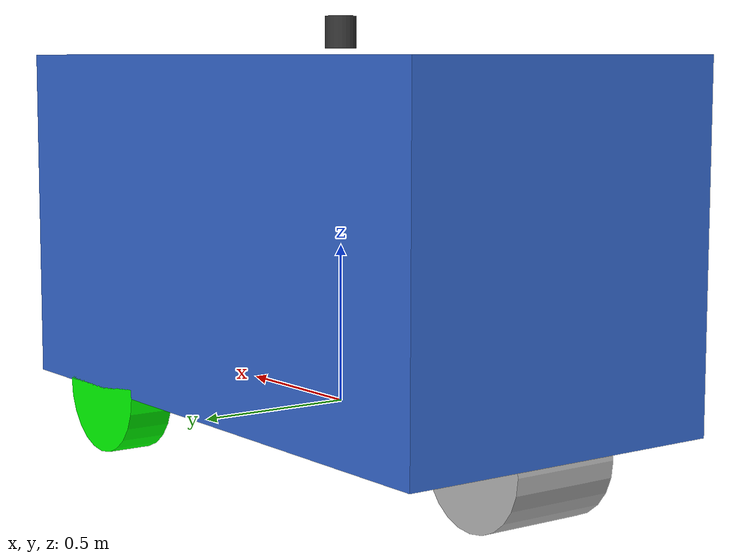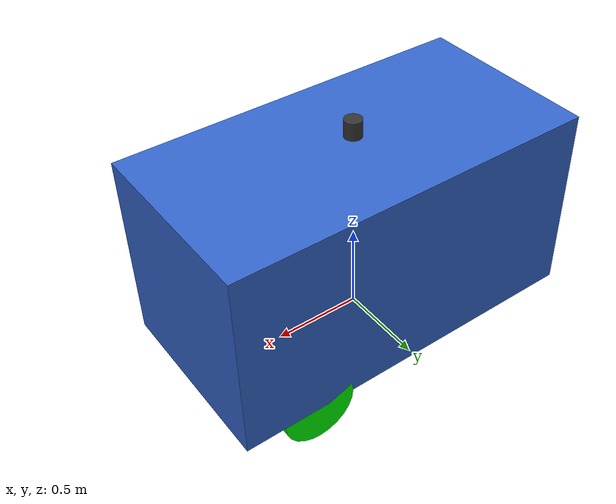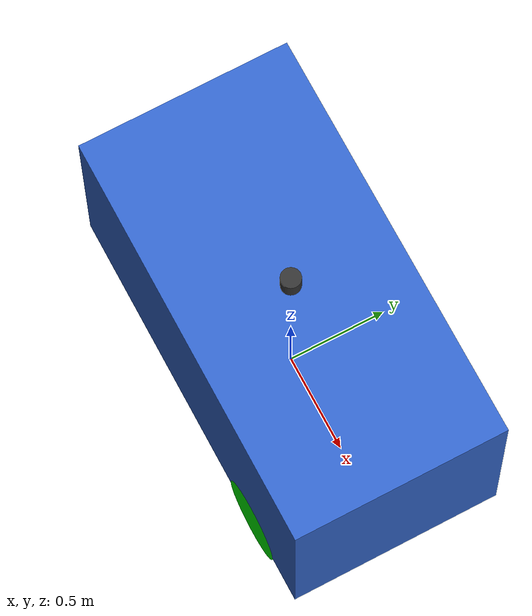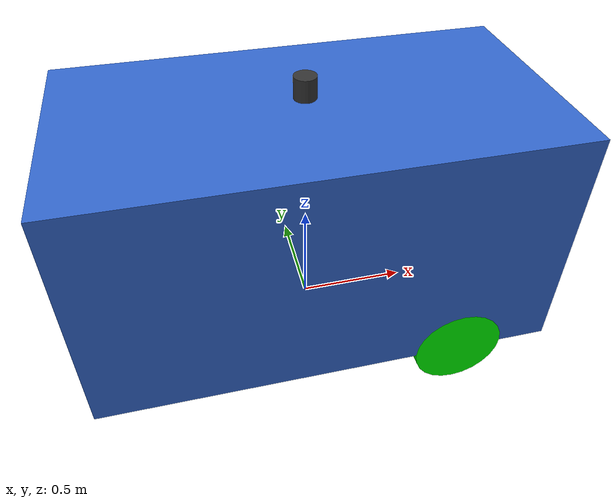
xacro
<?xml version="1.0"?>
<robot name="tri_wheel_robot" xmlns:xacro="http://www.ros.org/wiki/xacro">

  <!-- ========================= 定义常量（方便修改） ========================= -->
  <xacro:property name="base_length" value="2.1" /> <!-- 车体长 -->
  <xacro:property name="base_width"  value="1.076" /> <!-- 车体宽 -->
  <xacro:property name="base_height" value="1.1" /> <!-- 车体高 -->
  <xacro:property name="base_mass" value="37" /> <!-- 车体质量 -->
  <xacro:property name="wheel_radius" value="0.21" /> <!-- 轮子半径 -->
  <xacro:property name="wheel_width"  value="0.15" /> <!-- 轮子厚度 -->
  <xacro:property name="steering_wheel_radius" value="0.195" /> <!-- 轮子半径 -->
  <xacro:property name="steering_wheel_width"  value="0.35" /> <!-- 轮子厚度 -->
  <xacro:property name="wheel_y_offset" value="0.463" /> <!-- 驱动轮到中心距离 -->
  <xacro:property name="drive_wheel_mass" value="20" /> <!-- 驱动轮质量 -->
  <xacro:property name="steering_wheel_mass" value="20" /> <!-- 转向轮质量 -->
  <xacro:property name="steering_link_mass" value="10" /> <!-- 转向连杆质量 -->

  <!-- ========================= 传感器参数 ========================= -->
  <xacro:property name="lidar_height" value="0.1" />      <!-- 激光雷达高度 -->
  <xacro:property name="lidar_radius" value="0.05" />     <!-- 激光雷达半径 -->
  <xacro:property name="camera_size" value="0.05" />      <!-- 相机尺寸 -->
  <xacro:property name="imu_size" value="0.02" />         <!-- IMU 尺寸 -->

  <!-- ========================= 添加虚拟根链接 ========================= -->
  <link name="base_footprint">
    <!-- 这个链接没有惯性，没有碰撞和视觉，只是一个参考点 -->
  </link>

  <!-- ========================= 定义车体连杆 (base_link) ========================= -->
  <link name="base_link">
    <visual>
      <geometry>
        <box size="${base_length} ${base_width} ${base_height}"/>
      </geometry>
      <material name="blue">
        <color rgba="0.2 0.4 0.8 1.0"/> <!-- 蓝色 -->
      </material>
    </visual>
    <collision>
      <geometry>
        <box size="${base_length} ${base_width} ${base_height}"/>
      </geometry>
    </collision>
    <inertial>
      <mass value="${base_mass}"/> <!-- 车体质量，单位：千克 -->
      <inertia ixx="${base_mass*(base_width*base_width + base_height*base_height)/12}" ixy="0.0" ixz="0.0" iyy="${base_mass*(base_length*base_length + (base_height)*(base_height))/12}" iyz="0.0" izz="${base_mass*(base_length*base_length + base_width*base_width)/12}"/>
    </inertial>
  </link>

  <!-- 添加固定关节连接虚拟根链接和base_link -->
  <joint name="base_footprint_joint" type="fixed">
    <parent link="base_footprint"/>
    <child link="base_link"/>
    <origin xyz="0 0 ${base_height/2}" rpy="0 0 0"/>
  </joint>

  <!-- ========================= 定义左驱动轮 ========================= -->
  <link name="left_wheel_link">
    <visual>
      <geometry>
        <cylinder radius="${wheel_radius}" length="${wheel_width}"/>
      </geometry>
      <material name="green">
       <color rgba="0.0 1.0 0.0 1.0"/> <!-- 绿色 -->
      </material>
    </visual>
    <collision>
      <geometry>
        <cylinder radius="${wheel_radius}" length="${wheel_width}"/>
      </geometry>
    </collision>
    <inertial>
      <mass value="${drive_wheel_mass}"/>
      <inertia ixx="${drive_wheel_mass*(3*wheel_radius*wheel_radius + wheel_width*wheel_width)/12}" ixy="0.0" ixz="0.0" iyy="${drive_wheel_mass*(3*wheel_radius*wheel_radius + wheel_width*wheel_width)/12}" iyz="0.0" izz="${drive_wheel_mass*wheel_radius*wheel_radius/2}"/>
    </inertial>
  </link>

  <!-- 左轮关节：连接车体与左轮，类型为 continuous（连续旋转）-->
  <joint name="left_wheel_joint" type="continuous">
    <parent link="base_link"/>
    <child link="left_wheel_link"/>
    <origin xyz="0.616 ${wheel_y_offset} -${base_height/2}" rpy="1.5708 0 0"/>
    <axis xyz="0 0 1"/> <!-- 绕Y轴旋转 -->
  </joint>

  <!-- ========================= 定义右驱动轮（与左轮对称） ========================= -->
  <link name="right_wheel_link">
    <visual>
      <geometry>
        <cylinder radius="${wheel_radius}" length="${wheel_width}"/>
      </geometry>
      <material name="green">
       <color rgba="0.0 1.0 0.0 1.0"/> <!-- 绿色 -->
      </material>
    </visual>
    <collision>
      <geometry>
        <cylinder radius="${wheel_radius}" length="${wheel_width}"/>
      </geometry>
    </collision>
    <inertial>
      <mass value="${drive_wheel_mass}"/>
      <inertia ixx="${drive_wheel_mass*(3*wheel_radius*wheel_radius + wheel_width*wheel_width)/12}" ixy="0.0" ixz="0.0" iyy="${drive_wheel_mass*(3*wheel_radius*wheel_radius + wheel_width*wheel_width)/12}" iyz="0.0" izz="${drive_wheel_mass*wheel_radius*wheel_radius/2}"/>
    </inertial>
  </link>

  <joint name="right_wheel_joint" type="continuous">
    <parent link="base_link"/>
    <child link="right_wheel_link"/>
    <origin xyz="0.616 -${wheel_y_offset} -${base_height/2}" rpy="1.5708 0 0"/>
    <axis xyz="0 0 1"/>
  </joint>

  <!-- ========================= 定义前转向轮（可转向） ========================= -->
  <!-- 1. 转向臂连杆 (只是一个用于转向的连接杆) -->
  <link name="caster_steering_link">
    <visual>
        <origin xyz="0 0 0" rpy="0 0 0"/>
        <geometry>
            <cylinder radius="0.05" length="0.3"/> <!-- 一个小圆柱，表示转向臂 -->
        </geometry>
        <material name="gray">
            <color rgba="0.5 0.5 0.5 1.0"/>
        </material>
    </visual>
    <inertial>
        <mass value="${steering_link_mass}"/>
      <inertia ixx="${steering_link_mass*(3*0.05*0.05 + 0.3*0.3)/12}" ixy="0.0" ixz="0.0" iyy="${steering_link_mass*(3*0.05*0.05 + 0.3*0.3)/12}" iyz="0.0" izz="${steering_link_mass*0.05*0.05/2}"/>
    </inertial>
  </link>

  <!-- 2. 转向轮（真正的轮子）连杆 -->
  <link name="caster_wheel_link">
    <visual>
        <geometry>
            <!-- 轮子：一个直立的圆柱，注意轴线是Z轴 -->
            <cylinder radius="${steering_wheel_radius}" length="${steering_wheel_width}"/>
        </geometry>
        <material name="gray">
            <color rgba="0.7 0.7 0.7 1.0"/>
        </material>
    </visual>
    <collision>
        <geometry>
            <cylinder radius="${steering_wheel_radius}" length="${steering_wheel_width}"/>
        </geometry>
    </collision>
    <inertial>
        <mass value="${steering_wheel_mass}"/>
      <inertia ixx="${steering_wheel_mass*(3*steering_wheel_radius*steering_wheel_radius + steering_wheel_width*steering_wheel_width)/12}" ixy="0.0" ixz="0.0" iyy="${steering_wheel_mass*steering_wheel_radius*steering_wheel_radius/2}" iyz="0.0" izz="${steering_wheel_mass*(3*steering_wheel_radius*steering_wheel_radius + steering_wheel_width*steering_wheel_width)/12}"/>
  </inertial>
  </link>

  <!-- 3. 转向关节：连接车体与转向臂，控制左右转向 (revolute，绕Z轴) -->
  <joint name="caster_steering_joint" type="revolute">
    <parent link="base_link"/>
    <child link="caster_steering_link"/>
    <!-- 安装位置：车前部中间，略低于车体 -->
    <origin xyz="-0.855 0 -${base_height/2}" rpy="0 0 0"/>
    <axis xyz="0 0 1"/> <!-- 绕Z轴旋转（水平转向） -->
    <!-- 限制转向角度，例如左右各75度（约1.31弧度） -->
    <limit lower="-1.57" upper="1.57" effort="500.0" velocity="1.0"/>
    <dynamics damping="1.0" friction="0.1"/>
  </joint>

  <!-- 4. 滚动关节：连接转向臂与轮子，控制轮子滚动 (continuous，绕轮子Y轴) -->
  <joint name="caster_wheel_joint" type="continuous">
    <parent link="caster_steering_link"/>
    <child link="caster_wheel_link"/>
    <!-- 将轮子安装在转向臂末端，并将其扶正（绕X轴转90度） -->
    <origin xyz="0 0 -0.015" rpy="1.5708 0 0"/>
    <axis xyz="0 0 1"/> <!-- 轮子绕自己的Z轴旋转（滚动） -->
  </joint>

  <!--                              传感器定义                                       -->

  <!-- ========================= IMU 传感器 ========================= -->
  <!--
    IMU (惯性测量单元) 安装在车体中心
    输出：
    - 角速度 (gyroscope): rad/s
    - 线性加速度 (accelerometer): m/s²
    - 姿态 (orientation): 四元数
  -->
  <link name="imu_link">
    <visual>
      <geometry>
        <box size="${imu_size} ${imu_size} ${imu_size}"/>
      </geometry>
      <material name="red">
        <color rgba="1.0 0.0 0.0 1.0"/>
      </material>
    </visual>
    <collision>
      <geometry>
        <box size="${imu_size} ${imu_size} ${imu_size}"/>
      </geometry>
    </collision>
    <inertial>
      <mass value="0.01"/>
      <inertia ixx="0.000001" ixy="0" ixz="0" iyy="0.000001" iyz="0" izz="0.000001"/>
    </inertial>
  </link>

  <joint name="imu_joint" type="fixed">
    <parent link="base_link"/>
    <child link="imu_link"/>
    <origin xyz="0 0 0" rpy="0 0 0"/>
  </joint>

  <!-- ========================= 多线激光雷达 (3D LiDAR) ========================= -->
  <!--
    模拟 Velodyne VLP-16 或 Ouster OS1-32 类型的多线激光雷达
    安装在车顶中央，提供 360° 水平视角
    参数：
    - 水平视角: 360°
    - 垂直视角: -15° ~ +15° (共 16 线)
    - 最大距离: 100m
    - 更新频率: 10Hz
  -->
  <link name="lidar_link">
    <visual>
      <geometry>
        <cylinder radius="${lidar_radius}" length="${lidar_height}"/>
      </geometry>
      <material name="dark_gray">
        <color rgba="0.2 0.2 0.2 1.0"/>
      </material>
    </visual>
    <collision>
      <geometry>
        <cylinder radius="${lidar_radius}" length="${lidar_height}"/>
      </geometry>
    </collision>
    <inertial>
      <mass value="0.5"/>
      <inertia ixx="0.001" ixy="0" ixz="0" iyy="0.001" iyz="0" izz="0.001"/>
    </inertial>
  </link>

  <joint name="lidar_joint" type="fixed">
    <parent link="base_link"/>
    <child link="lidar_link"/>
    <!-- 安装在车顶中央 -->
    <origin xyz="0 0 ${base_height/2 + lidar_height/2 + 0.02}" rpy="0 0 0"/>
  </joint>

  <!-- ========================= 前置深度相机 (RGB-D Camera) ========================= -->
  <!--
    模拟 Intel RealSense D435 类型的深度相机
    安装在车体前方，用于近距离障碍物检测和视觉感知
    输出：
    - RGB 图像: 640x480 @ 30fps
    - 深度图像: 640x480 @ 30fps
    - 点云数据
  -->
  <link name="front_camera_link">
    <visual>
      <geometry>
        <box size="${camera_size} ${camera_size*2} ${camera_size}"/>
      </geometry>
      <material name="black">
        <color rgba="0.1 0.1 0.1 1.0"/>
      </material>
    </visual>
    <collision>
      <geometry>
        <box size="${camera_size} ${camera_size*2} ${camera_size}"/>
      </geometry>
    </collision>
    <inertial>
      <mass value="0.1"/>
      <inertia ixx="0.0001" ixy="0" ixz="0" iyy="0.0001" iyz="0" izz="0.0001"/>
    </inertial>
  </link>

  <!-- 相机光学坐标系 (Z 朝前, X 朝右, Y 朝下) -->
  <link name="front_camera_optical_link"/>

  <joint name="front_camera_joint" type="fixed">
    <parent link="base_link"/>
    <child link="front_camera_link"/>
    <!-- 安装在车体前方上部 -->
    <origin xyz="${base_length/2 - 0.05} 0 ${base_height/4}" rpy="0 0 0"/>
  </joint>

  <joint name="front_camera_optical_joint" type="fixed">
    <parent link="front_camera_link"/>
    <child link="front_camera_optical_link"/>
    <!-- 从 ROS 坐标系 (X前Y左Z上) 转换到相机光学坐标系 (Z前X右Y下) -->
    <origin xyz="0 0 0" rpy="${-pi/2} 0 ${-pi/2}"/>
  </joint>

  <!-- ========================= 后置相机 ========================= -->
  <!-- 用于倒车辅助和后方监控 -->
  <link name="rear_camera_link">
    <visual>
      <geometry>
        <box size="${camera_size} ${camera_size*2} ${camera_size}"/>
      </geometry>
      <material name="black">
        <color rgba="0.1 0.1 0.1 1.0"/>
      </material>
    </visual>
    <collision>
      <geometry>
        <box size="${camera_size} ${camera_size*2} ${camera_size}"/>
      </geometry>
    </collision>
    <inertial>
      <mass value="0.1"/>
      <inertia ixx="0.0001" ixy="0" ixz="0" iyy="0.0001" iyz="0" izz="0.0001"/>
    </inertial>
  </link>

  <link name="rear_camera_optical_link"/>

  <joint name="rear_camera_joint" type="fixed">
    <parent link="base_link"/>
    <child link="rear_camera_link"/>
    <!-- 安装在车体后方，朝后看 -->
    <origin xyz="${-base_length/2 + 0.05} 0 ${base_height/4}" rpy="0 0 ${pi}"/>
  </joint>

  <joint name="rear_camera_optical_joint" type="fixed">
    <parent link="rear_camera_link"/>
    <child link="rear_camera_optical_link"/>
    <origin xyz="0 0 0" rpy="${-pi/2} 0 ${-pi/2}"/>
  </joint>

  <!-- ========================= 左侧相机 ========================= -->
  <link name="left_camera_link">
    <visual>
      <geometry>
        <box size="${camera_size} ${camera_size*2} ${camera_size}"/>
      </geometry>
      <material name="black">
        <color rgba="0.1 0.1 0.1 1.0"/>
      </material>
    </visual>
    <collision>
      <geometry>
        <box size="${camera_size} ${camera_size*2} ${camera_size}"/>
      </geometry>
    </collision>
    <inertial>
      <mass value="0.1"/>
      <inertia ixx="0.0001" ixy="0" ixz="0" iyy="0.0001" iyz="0" izz="0.0001"/>
    </inertial>
  </link>

  <link name="left_camera_optical_link"/>

  <joint name="left_camera_joint" type="fixed">
    <parent link="base_link"/>
    <child link="left_camera_link"/>
    <origin xyz="0 ${base_width/2 - 0.05} ${base_height/4}" rpy="0 0 ${pi/2}"/>
  </joint>

  <joint name="left_camera_optical_joint" type="fixed">
    <parent link="left_camera_link"/>
    <child link="left_camera_optical_link"/>
    <origin xyz="0 0 0" rpy="${-pi/2} 0 ${-pi/2}"/>
  </joint>

  <!-- ========================= 右侧相机 ========================= -->
  <link name="right_camera_link">
    <visual>
      <geometry>
        <box size="${camera_size} ${camera_size*2} ${camera_size}"/>
      </geometry>
      <material name="black">
        <color rgba="0.1 0.1 0.1 1.0"/>
      </material>
    </visual>
    <collision>
      <geometry>
        <box size="${camera_size} ${camera_size*2} ${camera_size}"/>
      </geometry>
    </collision>
    <inertial>
      <mass value="0.1"/>
      <inertia ixx="0.0001" ixy="0" ixz="0" iyy="0.0001" iyz="0" izz="0.0001"/>
    </inertial>
  </link>

  <link name="right_camera_optical_link"/>

  <joint name="right_camera_joint" type="fixed">
    <parent link="base_link"/>
    <child link="right_camera_link"/>
    <origin xyz="0 ${-base_width/2 + 0.05} ${base_height/4}" rpy="0 0 ${-pi/2}"/>
  </joint>

  <joint name="right_camera_optical_joint" type="fixed">
    <parent link="right_camera_link"/>
    <child link="right_camera_optical_link"/>
    <origin xyz="0 0 0" rpy="${-pi/2} 0 ${-pi/2}"/>
  </joint>

  <!--                            Gazebo 物理属性                                    -->

  <gazebo reference="base_link">
    <material>Gazebo/Blue</material>
  </gazebo>

  <gazebo reference="left_wheel_link">
    <material>Gazebo/Green</material>
    <mu1>1.0</mu1>
    <mu2>1.0</mu2>
    <kp>1000000.0</kp>
    <kd>10.0</kd>
  </gazebo>

  <gazebo reference="right_wheel_link">
    <material>Gazebo/Green</material>
    <mu1>1.0</mu1>
    <mu2>1.0</mu2>
    <kp>1000000.0</kp>
    <kd>10.0</kd>
  </gazebo>

  <gazebo reference="caster_steering_link">
    <material>Gazebo/Grey</material>
    <mu1>1.0</mu1>
    <mu2>1.0</mu2>
  </gazebo>

  <gazebo reference="caster_wheel_link">
    <material>Gazebo/DarkGrey</material>
    <mu1>1.0</mu1>
    <mu2>1.0</mu2>
    <kp>1000000.0</kp>
    <kd>10.0</kd>
  </gazebo>

  <!-- 传感器外观 -->
  <gazebo reference="imu_link">
    <material>Gazebo/Red</material>
  </gazebo>

  <gazebo reference="lidar_link">
    <material>Gazebo/DarkGrey</material>
  </gazebo>

  <gazebo reference="front_camera_link">
    <material>Gazebo/Black</material>
  </gazebo>

  <gazebo reference="rear_camera_link">
    <material>Gazebo/Black</material>
  </gazebo>

  <gazebo reference="left_camera_link">
    <material>Gazebo/Black</material>
  </gazebo>

  <gazebo reference="right_camera_link">
    <material>Gazebo/Black</material>
  </gazebo>

  <!--                            Gazebo 传感器插件                                  -->

  <!-- ========================= IMU 传感器插件 ========================= -->
  <gazebo reference="imu_link">
    <sensor name="imu_sensor" type="imu">
      <always_on>true</always_on>
      <update_rate>100</update_rate>
      <topic>imu</topic>
      <gz_frame_id>imu_link</gz_frame_id>
      <imu>
        <angular_velocity>
          <x>
            <noise type="gaussian">
              <mean>0.0</mean>
              <stddev>0.0002</stddev>
            </noise>
          </x>
          <y>
            <noise type="gaussian">
              <mean>0.0</mean>
              <stddev>0.0002</stddev>
            </noise>
          </y>
          <z>
            <noise type="gaussian">
              <mean>0.0</mean>
              <stddev>0.0002</stddev>
            </noise>
          </z>
        </angular_velocity>
        <linear_acceleration>
          <x>
            <noise type="gaussian">
              <mean>0.0</mean>
              <stddev>0.017</stddev>
            </noise>
          </x>
          <y>
            <noise type="gaussian">
              <mean>0.0</mean>
              <stddev>0.017</stddev>
            </noise>
          </y>
          <z>
            <noise type="gaussian">
              <mean>0.0</mean>
              <stddev>0.017</stddev>
            </noise>
          </z>
        </linear_acceleration>
      </imu>
    </sensor>
  </gazebo>

  <!-- ========================= 3D 激光雷达插件 (模拟 16 线激光雷达) ========================= -->
  <gazebo reference="lidar_link">
    <sensor name="lidar_3d" type="gpu_lidar">
      <always_on>true</always_on>
      <update_rate>10</update_rate>
      <topic>scan/points</topic>
      <gz_frame_id>lidar_link</gz_frame_id>
      <lidar>
        <scan>
          <horizontal>
            <samples>1800</samples>        <!-- 水平采样点数 (0.2° 分辨率) -->
            <resolution>1</resolution>
            <min_angle>-3.14159</min_angle>
            <max_angle>3.14159</max_angle>
          </horizontal>
          <vertical>
            <samples>32</samples>           <!-- 32 线激光雷达 -->
            <resolution>1</resolution>
            <min_angle>-0.5236</min_angle>
            <max_angle>0.1745</max_angle>   <!-- +10° (向下看多一些) -->
          </vertical>
        </scan>
        <range>
          <min>0.3</min>
          <max>100.0</max>
          <resolution>0.01</resolution>
        </range>
        <noise>
          <type>gaussian</type>
          <mean>0.0</mean>
          <stddev>0.02</stddev>
        </noise>
      </lidar>
    </sensor>
  </gazebo>

  <!-- ========================= 2D 激光雷达 (用于导航) ========================= -->
  <!-- 从 3D 点云中提取一个水平扫描平面用于 2D 导航 -->
  <gazebo reference="lidar_link">
    <sensor name="lidar_2d" type="gpu_lidar">
      <always_on>true</always_on>
      <update_rate>20</update_rate>
      <topic>scan</topic>
      <gz_frame_id>lidar_link</gz_frame_id>
      <lidar>
        <scan>
          <horizontal>
            <samples>720</samples>
            <resolution>1</resolution>
            <min_angle>-3.14159</min_angle>
            <max_angle>3.14159</max_angle>
          </horizontal>
          <vertical>
            <samples>1</samples>
            <resolution>1</resolution>
            <min_angle>0</min_angle>
            <max_angle>0</max_angle>
          </vertical>
        </scan>
        <range>
          <min>0.3</min>
          <max>30.0</max>
          <resolution>0.01</resolution>
        </range>
        <noise>
          <type>gaussian</type>
          <mean>0.0</mean>
          <stddev>0.01</stddev>
        </noise>
      </lidar>
    </sensor>
  </gazebo>

  <!-- ========================= 前置深度相机插件 ========================= -->
  <gazebo reference="front_camera_link">
    <!-- RGB 相机 -->
    <sensor name="front_camera_rgb" type="camera">
      <always_on>true</always_on>
      <update_rate>30</update_rate>
      <topic>front_camera/image_raw</topic>
      <gz_frame_id>front_camera_optical_link</gz_frame_id>
      <camera>
        <horizontal_fov>1.047</horizontal_fov>
        <image>
          <width>640</width>
          <height>480</height>
          <format>R8G8B8</format>
        </image>
        <clip>
          <near>0.1</near>
          <far>100</far>
        </clip>
        <noise>
          <type>gaussian</type>
          <mean>0.0</mean>
          <stddev>0.007</stddev>
        </noise>
      </camera>
    </sensor>

    <!-- 深度相机 -->
    <sensor name="front_camera_depth" type="depth_camera">
      <always_on>true</always_on>
      <update_rate>30</update_rate>
      <topic>front_camera/depth</topic>
      <gz_frame_id>front_camera_optical_link</gz_frame_id>
      <camera>
        <horizontal_fov>1.047</horizontal_fov>
        <image>
          <width>640</width>
          <height>480</height>
          <format>R_FLOAT32</format>
        </image>
        <clip>
          <near>0.1</near>
          <far>10.0</far>
        </clip>
      </camera>
    </sensor>
  </gazebo>

  <!-- ========================= 后置相机插件 ========================= -->
  <gazebo reference="rear_camera_link">
    <sensor name="rear_camera_rgb" type="camera">
      <always_on>true</always_on>
      <update_rate>30</update_rate>
      <topic>rear_camera/image_raw</topic>
      <gz_frame_id>rear_camera_optical_link</gz_frame_id>
      <camera>
        <horizontal_fov>1.047</horizontal_fov>
        <image>
          <width>640</width>
          <height>480</height>
          <format>R8G8B8</format>
        </image>
        <clip>
          <near>0.1</near>
          <far>100</far>
        </clip>
      </camera>
    </sensor>
  </gazebo>

  <!-- ========================= 左侧相机插件 ========================= -->
  <gazebo reference="left_camera_link">
    <sensor name="left_camera_rgb" type="camera">
      <always_on>true</always_on>
      <update_rate>30</update_rate>
      <topic>left_camera/image_raw</topic>
      <gz_frame_id>left_camera_optical_link</gz_frame_id>
      <camera>
        <horizontal_fov>1.047</horizontal_fov>
        <image>
          <width>640</width>
          <height>480</height>
          <format>R8G8B8</format>
        </image>
        <clip>
          <near>0.1</near>
          <far>100</far>
        </clip>
      </camera>
    </sensor>
  </gazebo>

  <!-- ========================= 右侧相机插件 ========================= -->
  <gazebo reference="right_camera_link">
    <sensor name="right_camera_rgb" type="camera">
      <always_on>true</always_on>
      <update_rate>30</update_rate>
      <topic>right_camera/image_raw</topic>
      <gz_frame_id>right_camera_optical_link</gz_frame_id>
      <camera>
        <horizontal_fov>1.047</horizontal_fov>
        <image>
          <width>640</width>
          <height>480</height>
          <format>R8G8B8</format>
        </image>
        <clip>
          <near>0.1</near>
          <far>100</far>
        </clip>
      </camera>
    </sensor>
  </gazebo>

  <!--                            Gazebo 控制器插件                                  -->
  <!-- 注意: Sensors 和 IMU 系统插件已在世界文件 (test_world.sdf) 中定义 -->

  <!-- ========================= 差速驱动插件 ========================= -->
  <gazebo>
    <plugin name="gz::sim::systems::DiffDrive" filename="gz-sim-diff-drive-system">
      <left_joint>left_wheel_joint</left_joint>
      <right_joint>right_wheel_joint</right_joint>
      <wheel_separation>${wheel_y_offset*2}</wheel_separation>
      <wheel_radius>${wheel_radius}</wheel_radius>
      <odom_publish_frequency>50.0</odom_publish_frequency>
      <topic>cmd_vel</topic>
      <odom_topic>odom</odom_topic>
      <tf_topic>tf</tf_topic>
      <frame_id>odom</frame_id>
      <child_frame_id>base_footprint</child_frame_id>
    </plugin>
  </gazebo>

  <!-- ========================= 转向关节控制器 ========================= -->
  <gazebo>
    <plugin name="gz::sim::systems::JointPositionController" filename="gz-sim-joint-position-controller-system">
      <joint_name>caster_steering_joint</joint_name>
      <topic>caster_steering/set_position</topic>
      <initial_position>0.0</initial_position>
      <pid>
        <p>100.0</p>
        <i>0.1</i>
        <d>1.0</d>
      </pid>
    </plugin>
  </gazebo>

  <!-- ========================= 关节状态发布器 ========================= -->
  <gazebo>
    <plugin name="gz::sim::systems::JointStatePublisher" filename="gz-sim-joint-state-publisher-system">
      <joint_name>left_wheel_joint</joint_name>
      <joint_name>right_wheel_joint</joint_name>
      <joint_name>caster_steering_joint</joint_name>
      <joint_name>caster_wheel_joint</joint_name>
      <update_rate>50.0</update_rate>
    </plugin>
  </gazebo>

</robot>
